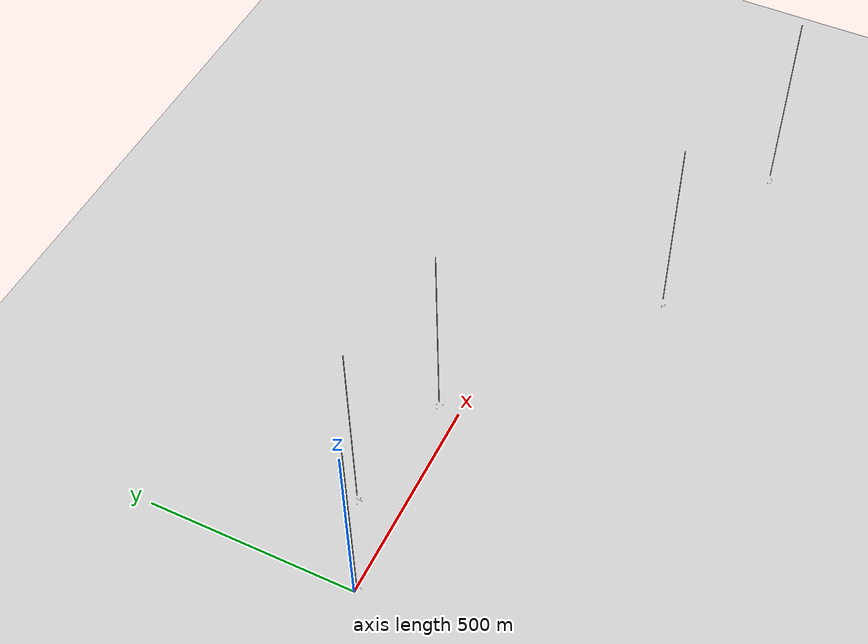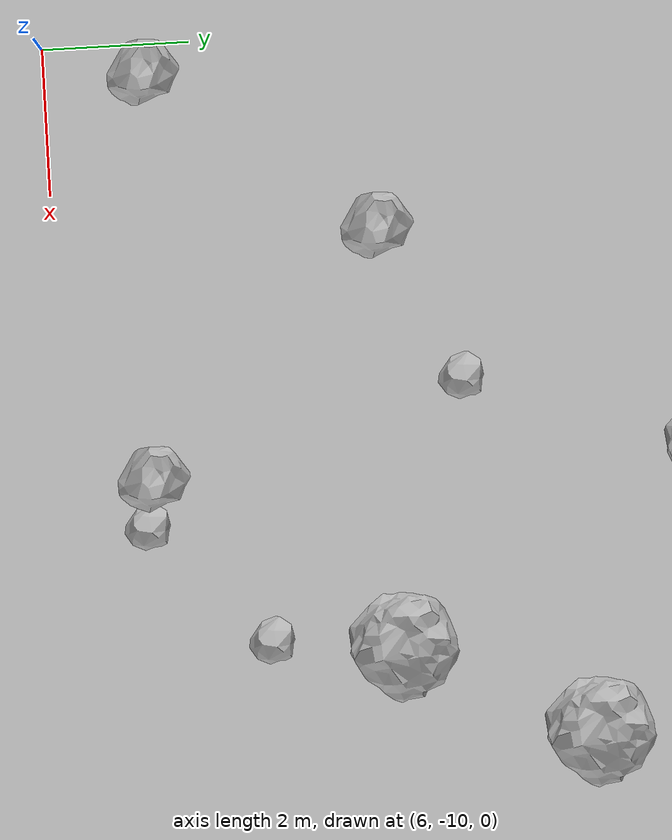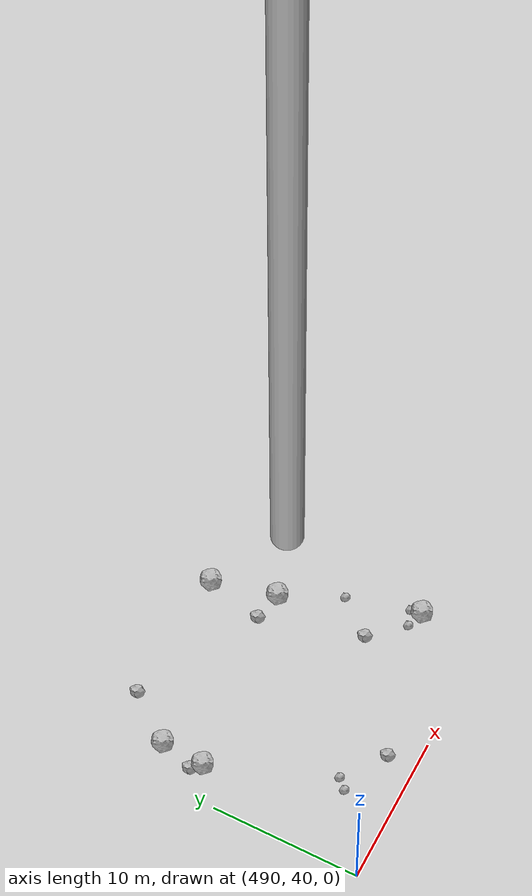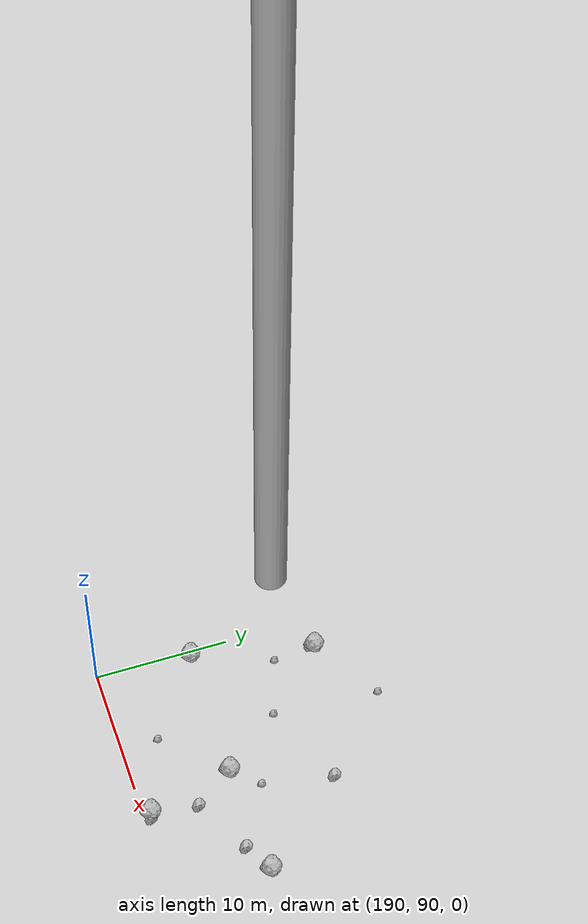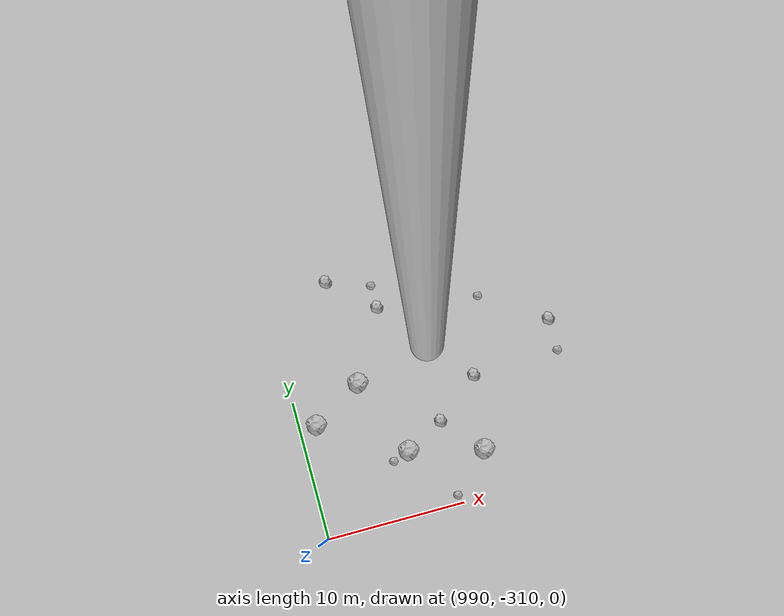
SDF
<?xml version="1.0" ?>
<sdf version="1.6">
  <world name="default">

    <include>
      <uri>model://custom_ground</uri>
    </include>

    <include>
      <uri>model://sun</uri>
    </include>

    <spherical_coordinates>
      <surface_model>EARTH_WGS84</surface_model>
      <latitude_deg>38.161479</latitude_deg>
      <longitude_deg>-122.454630</longitude_deg>
      <elevation>488.0</elevation>
      <heading_deg>90</heading_deg>
    </spherical_coordinates>

    <model name="rock1_0_0">
      <include>
        <uri>model://rock1</uri>
        <pose>14.183474545305936 7.876991025783266 0.5 0 0 0</pose>
      </include>
    </model>
    <model name="rock1_0_1">
      <include>
        <uri>model://rock1</uri>
        <pose>10.68970046358551 5.651363634496986 0.5 0 0 0</pose>
      </include>
    </model>
    <model name="rock1_0_2">
      <include>
        <uri>model://rock1</uri>
        <pose>11.885833174559275 -1.0956056253909559 0.5 0 0 0</pose>
      </include>
    </model>
    <model name="rock1_0_3">
      <include>
        <uri>model://rock1</uri>
        <pose>14.372510745568526 -5.514892364718651 0.5 0 0 0</pose>
      </include>
    </model>
    <model name="rock1_0_4">
      <include>
        <uri>model://rock1</uri>
        <pose>15.655833289220327 -2.9202942754970547 0.5 0 0 0</pose>
      </include>
    </model>
    <model name="rock2_0_0">
      <include>
        <uri>model://rock2</uri>
        <pose>8.644632201126562 -5.575284616987906 0.3 0 0 0</pose>
      </include>
    </model>
    <model name="rock2_0_1">
      <include>
        <uri>model://rock2</uri>
        <pose>6.400734633629015 -8.6338039557862 0.3 0 0 0</pose>
      </include>
    </model>
    <model name="rock2_0_2">
      <include>
        <uri>model://rock2</uri>
        <pose>10.615517516886683 2.0486592545963234 0.3 0 0 0</pose>
      </include>
    </model>
    <model name="rock2_0_3">
      <include>
        <uri>model://rock2</uri>
        <pose>8.242095779484535 8.509266143077777 0.3 0 0 0</pose>
      </include>
    </model>
    <model name="rock2_0_4">
      <include>
        <uri>model://rock2</uri>
        <pose>11.924392998783722 -8.778635304126453 0.3 0 0 0</pose>
      </include>
    </model>
    <model name="rock3_0_0">
      <include>
        <uri>model://rock3</uri>
        <pose>2.847979984828606 2.942389518625463 0.2 0 0 0</pose>
      </include>
    </model>
    <model name="rock3_0_1">
      <include>
        <uri>model://rock3</uri>
        <pose>14.188680235693116 -7.3040758835233355 0.2 0 0 0</pose>
      </include>
    </model>
    <model name="rock3_0_2">
      <include>
        <uri>model://rock3</uri>
        <pose>12.556769403350627 -8.909679533613295 0.2 0 0 0</pose>
      </include>
    </model>
    <model name="rock3_0_3">
      <include>
        <uri>model://rock3</uri>
        <pose>10.432296989049421 9.076499582413891 0.2 0 0 0</pose>
      </include>
    </model>
    <model name="rock3_0_4">
      <include>
        <uri>model://rock3</uri>
        <pose>10.733672320238046 -4.548568440444283 0.2 0 0 0</pose>
      </include>
    </model>
    <model name="rock1_1_0">
      <include>
        <uri>model://rock1</uri>
        <pose>190.49631553188163 97.05981817884233 0.5 0 0 0</pose>
      </include>
    </model>
    <model name="rock1_1_1">
      <include>
        <uri>model://rock1</uri>
        <pose>209.08746738181011 96.99969201462874 0.5 0 0 0</pose>
      </include>
    </model>
    <model name="rock1_1_2">
      <include>
        <uri>model://rock1</uri>
        <pose>202.3187354528503 90.51388682632968 0.5 0 0 0</pose>
      </include>
    </model>
    <model name="rock1_1_3">
      <include>
        <uri>model://rock1</uri>
        <pose>200.82789106327758 96.73312849590327 0.5 0 0 0</pose>
      </include>
    </model>
    <model name="rock1_1_4">
      <include>
        <uri>model://rock1</uri>
        <pose>192.58059611541165 106.04188815330926 0.5 0 0 0</pose>
      </include>
    </model>
    <model name="rock2_1_0">
      <include>
        <uri>model://rock2</uri>
        <pose>202.84052255183627 93.82116514936467 0.3 0 0 0</pose>
      </include>
    </model>
    <model name="rock2_1_1">
      <include>
        <uri>model://rock2</uri>
        <pose>203.6093954967694 103.58648288218158 0.3 0 0 0</pose>
      </include>
    </model>
    <model name="rock2_1_2">
      <include>
        <uri>model://rock2</uri>
        <pose>192.5234094992576 105.76528364874736 0.3 0 0 0</pose>
      </include>
    </model>
    <model name="rock2_1_3">
      <include>
        <uri>model://rock2</uri>
        <pose>206.9737233712602 95.91234694670243 0.3 0 0 0</pose>
      </include>
    </model>
    <model name="rock2_1_4">
      <include>
        <uri>model://rock2</uri>
        <pose>202.75648524698664 90.43288898106579 0.3 0 0 0</pose>
      </include>
    </model>
    <model name="rock3_1_0">
      <include>
        <uri>model://rock3</uri>
        <pose>197.27496017116562 101.20236151454925 0.2 0 0 0</pose>
      </include>
    </model>
    <model name="rock3_1_1">
      <include>
        <uri>model://rock3</uri>
        <pose>192.83037510633312 102.80619569498532 0.2 0 0 0</pose>
      </include>
    </model>
    <model name="rock3_1_2">
      <include>
        <uri>model://rock3</uri>
        <pose>196.64900093498883 92.66035234852365 0.2 0 0 0</pose>
      </include>
    </model>
    <model name="rock3_1_3">
      <include>
        <uri>model://rock3</uri>
        <pose>197.90327133033594 109.0376861525593 0.2 0 0 0</pose>
      </include>
    </model>
    <model name="rock3_1_4">
      <include>
        <uri>model://rock3</uri>
        <pose>202.53560636457368 98.51375934022937 0.2 0 0 0</pose>
      </include>
    </model>
    <model name="rock1_2_0">
      <include>
        <uri>model://rock1</uri>
        <pose>492.4394038868946 54.93509165481557 0.5 0 0 0</pose>
      </include>
    </model>
    <model name="rock1_2_1">
      <include>
        <uri>model://rock1</uri>
        <pose>492.2636381297922 51.99508062718721 0.5 0 0 0</pose>
      </include>
    </model>
    <model name="rock1_2_2">
      <include>
        <uri>model://rock1</uri>
        <pose>503.9058894618595 57.55019767799275 0.5 0 0 0</pose>
      </include>
    </model>
    <model name="rock1_2_3">
      <include>
        <uri>model://rock1</uri>
        <pose>508.0905454244248 44.42382089199113 0.5 0 0 0</pose>
      </include>
    </model>
    <model name="rock1_2_4">
      <include>
        <uri>model://rock1</uri>
        <pose>504.97917433739445 53.27110427430611 0.5 0 0 0</pose>
      </include>
    </model>
    <model name="rock2_2_0">
      <include>
        <uri>model://rock2</uri>
        <pose>498.13350087364404 41.93930474535269 0.3 0 0 0</pose>
      </include>
    </model>
    <model name="rock2_2_1">
      <include>
        <uri>model://rock2</uri>
        <pose>504.92668507709504 46.966479042578165 0.3 0 0 0</pose>
      </include>
    </model>
    <model name="rock2_2_2">
      <include>
        <uri>model://rock2</uri>
        <pose>491.6656363271261 52.62664205298269 0.3 0 0 0</pose>
      </include>
    </model>
    <model name="rock2_2_3">
      <include>
        <uri>model://rock2</uri>
        <pose>502.9819018124888 53.70214168167121 0.3 0 0 0</pose>
      </include>
    </model>
    <model name="rock2_2_4">
      <include>
        <uri>model://rock2</uri>
        <pose>494.7980280547859 58.06151969952138 0.3 0 0 0</pose>
      </include>
    </model>
    <model name="rock3_2_0">
      <include>
        <uri>model://rock3</uri>
        <pose>506.81542226013465 49.301258230230026 0.2 0 0 0</pose>
      </include>
    </model>
    <model name="rock3_2_1">
      <include>
        <uri>model://rock3</uri>
        <pose>494.7604118259956 43.27660483389415 0.2 0 0 0</pose>
      </include>
    </model>
    <model name="rock3_2_2">
      <include>
        <uri>model://rock3</uri>
        <pose>506.86924949720594 44.79766040546447 0.2 0 0 0</pose>
      </include>
    </model>
    <model name="rock3_2_3">
      <include>
        <uri>model://rock3</uri>
        <pose>507.92570812514884 45.162651618826544 0.2 0 0 0</pose>
      </include>
    </model>
    <model name="rock3_2_4">
      <include>
        <uri>model://rock3</uri>
        <pose>495.3974057873251 43.92502820972285 0.2 0 0 0</pose>
      </include>
    </model>
    <model name="rock1_3_0">
      <include>
        <uri>model://rock1</uri>
        <pose>991.2796859336322 -301.9390057188302 0.5 0 0 0</pose>
      </include>
    </model>
    <model name="rock1_3_1">
      <include>
        <uri>model://rock1</uri>
        <pose>1002.3757842589722 -306.68975518099745 0.5 0 0 0</pose>
      </include>
    </model>
    <model name="rock1_3_2">
      <include>
        <uri>model://rock1</uri>
        <pose>1002.122193651717 -295.1962668262935 0.5 0 0 0</pose>
      </include>
    </model>
    <model name="rock1_3_3">
      <include>
        <uri>model://rock1</uri>
        <pose>994.8992844030853 -299.8121028149376 0.5 0 0 0</pose>
      </include>
    </model>
    <model name="rock1_3_4">
      <include>
        <uri>model://rock1</uri>
        <pose>997.137607962704 -305.40533161896406 0.5 0 0 0</pose>
      </include>
    </model>
    <model name="rock2_3_0">
      <include>
        <uri>model://rock2</uri>
        <pose>999.8663411091683 -303.94254096919025 0.3 0 0 0</pose>
      </include>
    </model>
    <model name="rock2_3_1">
      <include>
        <uri>model://rock2</uri>
        <pose>997.5991304822156 -294.8820033109024 0.3 0 0 0</pose>
      </include>
    </model>
    <model name="rock2_3_2">
      <include>
        <uri>model://rock2</uri>
        <pose>1009.2544464438928 -298.893817853616 0.3 0 0 0</pose>
      </include>
    </model>
    <model name="rock2_3_3">
      <include>
        <uri>model://rock2</uri>
        <pose>1003.0217826186166 -301.3909836542349 0.3 0 0 0</pose>
      </include>
    </model>
    <model name="rock2_3_4">
      <include>
        <uri>model://rock2</uri>
        <pose>994.4964630656046 -292.1706406473477 0.3 0 0 0</pose>
      </include>
    </model>
    <model name="rock3_3_0">
      <include>
        <uri>model://rock3</uri>
        <pose>995.8706104023726 -305.8951924466269 0.2 0 0 0</pose>
      </include>
    </model>
    <model name="rock3_3_1">
      <include>
        <uri>model://rock3</uri>
        <pose>1009.2591338803084 -301.2740610846771 0.2 0 0 0</pose>
      </include>
    </model>
    <model name="rock3_3_2">
      <include>
        <uri>model://rock3</uri>
        <pose>1004.7776883781853 -296.00982123853976 0.2 0 0 0</pose>
      </include>
    </model>
    <model name="rock3_3_3">
      <include>
        <uri>model://rock3</uri>
        <pose>997.5607083185696 -293.2984164558113 0.2 0 0 0</pose>
      </include>
    </model>
    <model name="rock3_3_4">
      <include>
        <uri>model://rock3</uri>
        <pose>999.6558024367316 -309.4010217979766 0.2 0 0 0</pose>
      </include>
    </model>
    <model name="rock1_4_0">
      <include>
        <uri>model://rock1</uri>
        <pose>1502.9269507753238 -406.7750595421979 0.5 0 0 0</pose>
      </include>
    </model>
    <model name="rock1_4_1">
      <include>
        <uri>model://rock1</uri>
        <pose>1491.6083756208493 -405.40350820949436 0.5 0 0 0</pose>
      </include>
    </model>
    <model name="rock1_4_2">
      <include>
        <uri>model://rock1</uri>
        <pose>1508.413248075223 -403.02814611678764 0.5 0 0 0</pose>
      </include>
    </model>
    <model name="rock1_4_3">
      <include>
        <uri>model://rock1</uri>
        <pose>1491.4406861838424 -403.8406247070287 0.5 0 0 0</pose>
      </include>
    </model>
    <model name="rock1_4_4">
      <include>
        <uri>model://rock1</uri>
        <pose>1490.937947373829 -399.34273357911115 0.5 0 0 0</pose>
      </include>
    </model>
    <model name="rock2_4_0">
      <include>
        <uri>model://rock2</uri>
        <pose>1499.5768652847821 -403.76797450671484 0.3 0 0 0</pose>
      </include>
    </model>
    <model name="rock2_4_1">
      <include>
        <uri>model://rock2</uri>
        <pose>1509.0131766605953 -397.51314421573244 0.3 0 0 0</pose>
      </include>
    </model>
    <model name="rock2_4_2">
      <include>
        <uri>model://rock2</uri>
        <pose>1491.0737552872874 -396.4818256608591 0.3 0 0 0</pose>
      </include>
    </model>
    <model name="rock2_4_3">
      <include>
        <uri>model://rock2</uri>
        <pose>1497.059889973529 -405.47618369865785 0.3 0 0 0</pose>
      </include>
    </model>
    <model name="rock2_4_4">
      <include>
        <uri>model://rock2</uri>
        <pose>1492.3879191752735 -399.05307501648696 0.3 0 0 0</pose>
      </include>
    </model>
    <model name="rock3_4_0">
      <include>
        <uri>model://rock3</uri>
        <pose>1496.153723268747 -401.3554454615076 0.2 0 0 0</pose>
      </include>
    </model>
    <model name="rock3_4_1">
      <include>
        <uri>model://rock3</uri>
        <pose>1498.8538666039585 -397.38137147214536 0.2 0 0 0</pose>
      </include>
    </model>
    <model name="rock3_4_2">
      <include>
        <uri>model://rock3</uri>
        <pose>1506.9158041937949 -401.9464110792032 0.2 0 0 0</pose>
      </include>
    </model>
    <model name="rock3_4_3">
      <include>
        <uri>model://rock3</uri>
        <pose>1501.418343279103 -391.26009188374445 0.2 0 0 0</pose>
      </include>
    </model>
    <model name="rock3_4_4">
      <include>
        <uri>model://rock3</uri>
        <pose>1495.3920589381344 -408.4757929980235 0.2 0 0 0</pose>
      </include>
    </model>

    <model name="cylinder_1">
      <static>true</static>
      <link name="link">
        <visual name="visual">
          <geometry>
            <cylinder>
              <radius>1</radius>
              <length>500</length>
            </cylinder>
          </geometry>
        </visual>
      </link>
      <pose>10 0 270 0 0 0</pose>
    </model>

    <model name="cylinder_2">
      <static>true</static>
      <link name="link">
        <visual name="visual">
          <geometry>
            <cylinder>
              <radius>1</radius>
              <length>500</length>
            </cylinder>
          </geometry>
        </visual>
      </link>
      <pose>200 100 270 0 0 0</pose>
    </model>

    <model name="cylinder_3">
      <static>true</static>
      <link name="link">
        <visual name="visual">
          <geometry>
            <cylinder>
              <radius>1</radius>
              <length>500</length>
            </cylinder>
          </geometry>
        </visual>
      </link>
      <pose>500 50 270 0 0 0</pose>
    </model>

    <model name="cylinder_4">
      <static>true</static>
      <link name="link">
        <visual name="visual">
          <geometry>
            <cylinder>
              <radius>1</radius>
              <length>500</length>
            </cylinder>
          </geometry>
        </visual>
      </link>
      <pose>1000 -300 270 0 0 0</pose>
    </model>

    <model name="cylinder_5">
      <static>true</static>
      <link name="link">
        <visual name="visual">
          <geometry>
            <cylinder>
              <radius>1</radius>
              <length>500</length>
            </cylinder>
          </geometry>
        </visual>
      </link>
      <pose>1500 -400 270 0 0 0</pose>
    </model>

  </world>
</sdf>

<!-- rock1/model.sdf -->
<sdf version="1.6">
  <model name="rock1">
    <static>true</static> <!-- Set to true if the model should not move -->
    <pose>0 0 0 0 0 0</pose>

    <!--z offset is 0.5 for full scale-->

    <link name="link">
      <collision name="rock1_collision">
        <geometry>
          <mesh>
            <uri>model://meshes/rock1.dae</uri>
          </mesh>
        </geometry>
      </collision>
      <visual name="rock1_visual">
        <geometry>
          <mesh>
            <uri>model://meshes/rock1.dae</uri>
          </mesh>
        </geometry>
        <material>
          <script>
            <uri>model://materials/scripts/sand_pebbles.material</uri>
            <name>custom_ground/Image</name>
          </script>
        </material>
      </visual>
    </link>
  </model>
</sdf>

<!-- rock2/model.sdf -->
<sdf version="1.6">
  <model name="rock2">
    <static>true</static> <!-- Set to true if the model should not move -->
    <pose>0 0 0 0 0 0</pose>

    <!--z offset is 0.3 for full scale-->

    <link name="link">
      <collision name="rock2_collision">
        <geometry>
          <mesh>
            <uri>model://meshes/rock2.dae</uri>
          </mesh>
        </geometry>
      </collision>
      <visual name="rock2_visual">
        <geometry>
          <mesh>
            <uri>model://meshes/rock2.dae</uri>
          </mesh>
        </geometry>
        <material>
          <script>
            <uri>model://materials/scripts/sand_pebbles.material</uri>
            <name>custom_ground/Image</name>
          </script>
        </material>
      </visual>
    </link>
  </model>
</sdf>

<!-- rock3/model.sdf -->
<sdf version="1.6">
  <model name="rock3">
    <static>true</static> <!-- Set to true if the model should not move -->
    <pose>0 0 0 0 0 0</pose>

    <!--z offset is 0.2 for full scale-->

    <link name="link">
      <collision name="rock3_collision">
        <geometry>
          <mesh>
            <uri>model://meshes/rock3.dae</uri>
          </mesh>
        </geometry>
      </collision>
      <visual name="rock3_visual">
        <geometry>
          <mesh>
            <uri>model://meshes/rock3.dae</uri>
          </mesh>
        </geometry>
        <material>
          <script>
            <uri>model://materials/scripts/sand_pebbles.material</uri>
            <name>custom_ground/Image</name>
          </script>
        </material>
      </visual>
    </link>
  </model>
</sdf>

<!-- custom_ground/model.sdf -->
<sdf version="1.6">
  <model name="custom_ground">
    <static>true</static> <!-- Ground is static and immovable -->
    <link name="ground_link">
      <pose>240 0 0 0 0 0</pose> <!-- Position and orientation relative to the world -->
      <!-- Visual Representation -->
      <visual name="ground_visual">
        <geometry>
          <plane>
            <normal>0 0 1</normal> <!-- Upward facing plane -->
            <size>500 500</size> <!-- Size of the plane -->
          </plane>
        </geometry>
        <material>
          <script>
            <uri>model://materials/scripts/sand_pebbles.material</uri>
            <name>custom_ground/Image</name>
          </script>
        </material>
      </visual>

      <!-- Collision Representation -->
      <collision name="ground_collision">
        <geometry>
          <plane>
            <normal>0 0 1</normal>
            <size>100 100</size>
          </plane>
        </geometry>
      </collision>

    </link>
  </model>
</sdf>
